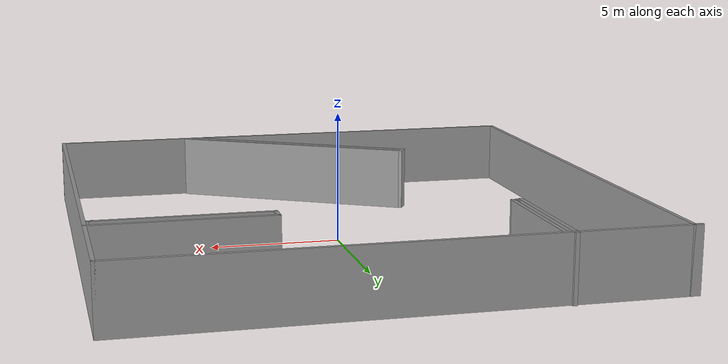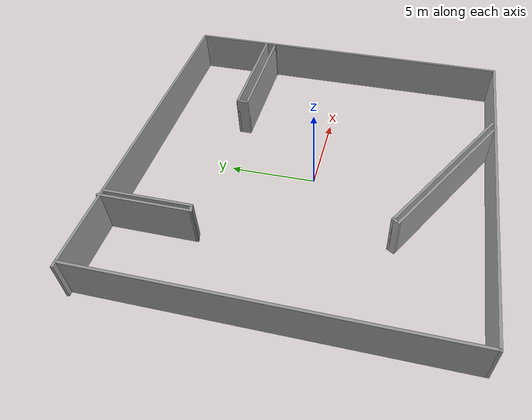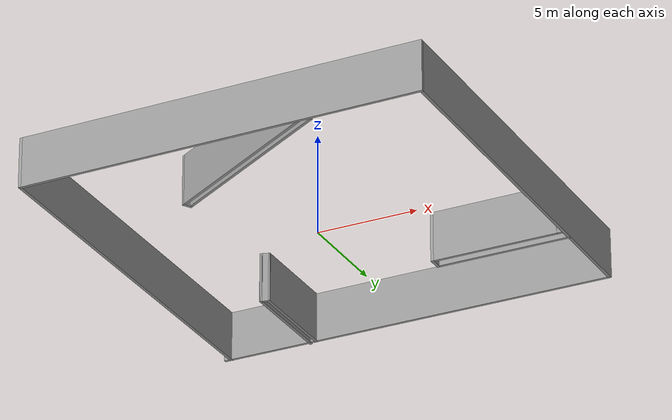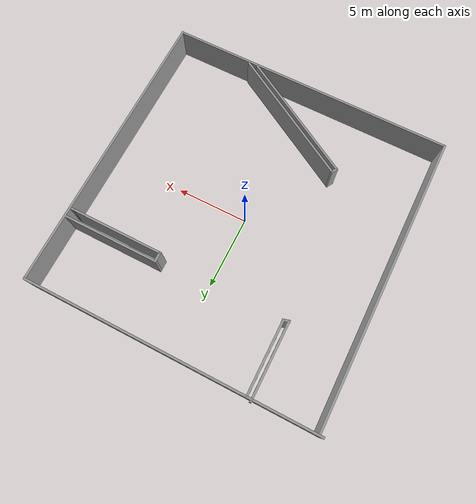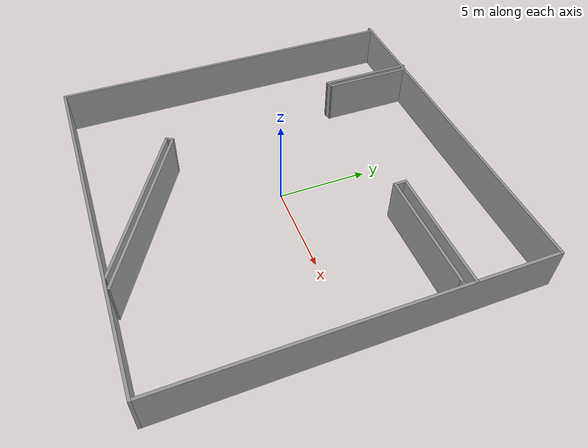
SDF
<?xml version='1.0'?>
<sdf version='1.7'>
  <model name='maze.world'>
    <pose>-0.033073 0.140552 0 0 -0 0</pose>
    <link name='Wall_10'>
      <collision name='Wall_10_Collision'>
        <geometry>
          <box>
            <size>5.25 0.15 2.5</size>
          </box>
        </geometry>
        <pose>0 0 1.25 0 -0 0</pose>
      </collision>
      <visual name='Wall_10_Visual'>
        <pose>0 0 1.25 0 -0 0</pose>
        <geometry>
          <box>
            <size>5.25 0.15 2.5</size>
          </box>
        </geometry>
        <material>
          <script>
            <uri>file://media/materials/scripts/gazebo.material</uri>
            <name>Gazebo/Grey</name>
          </script>
          <ambient>1 1 1 1</ambient>
        </material>
        <meta>
          <layer>0</layer>
        </meta>
      </visual>
      <pose>-5.54659 7.5526 0 0 -0 -1.5708</pose>
    </link>
    <link name='Wall_11'>
      <collision name='Wall_11_Collision'>
        <geometry>
          <box>
            <size>0.5 0.15 2.5</size>
          </box>
        </geometry>
        <pose>0 0 1.25 0 -0 0</pose>
      </collision>
      <visual name='Wall_11_Visual'>
        <pose>0 0 1.25 0 -0 0</pose>
        <geometry>
          <box>
            <size>0.5 0.15 2.5</size>
          </box>
        </geometry>
        <material>
          <script>
            <uri>file://media/materials/scripts/gazebo.material</uri>
            <name>Gazebo/Grey</name>
          </script>
          <ambient>1 1 1 1</ambient>
        </material>
        <meta>
          <layer>0</layer>
        </meta>
      </visual>
      <pose>-5.37756 5.0479 0 0 -0 0.261799</pose>
    </link>
    <link name='Wall_12'>
      <collision name='Wall_12_Collision'>
        <geometry>
          <box>
            <size>5 0.15 2.5</size>
          </box>
        </geometry>
        <pose>0 0 1.25 0 -0 0</pose>
      </collision>
      <visual name='Wall_12_Visual'>
        <pose>0 0 1.25 0 -0 0</pose>
        <geometry>
          <box>
            <size>5 0.15 2.5</size>
          </box>
        </geometry>
        <material>
          <script>
            <uri>file://media/materials/scripts/gazebo.material</uri>
            <name>Gazebo/Grey</name>
          </script>
          <ambient>1 1 1 1</ambient>
        </material>
        <meta>
          <layer>0</layer>
        </meta>
      </visual>
      <pose>-5.20852 7.51819 0 0 -0 1.5708</pose>
    </link>
    <link name='Wall_14'>
      <collision name='Wall_14_Collision'>
        <geometry>
          <box>
            <size>6.75 0.15 2.5</size>
          </box>
        </geometry>
        <pose>0 0 1.25 0 -0 0</pose>
      </collision>
      <visual name='Wall_14_Visual'>
        <pose>0 0 1.25 0 -0 0</pose>
        <geometry>
          <box>
            <size>6.75 0.15 2.5</size>
          </box>
        </geometry>
        <material>
          <script>
            <uri>file://media/materials/scripts/gazebo.material</uri>
            <name>Gazebo/Grey</name>
          </script>
          <ambient>1 1 1 1</ambient>
        </material>
        <meta>
          <layer>0</layer>
        </meta>
      </visual>
      <pose>6.74112 5.42097 0 0 -0 3.14159</pose>
    </link>
    <link name='Wall_15'>
      <collision name='Wall_15_Collision'>
        <geometry>
          <box>
            <size>0.75 0.15 2.5</size>
          </box>
        </geometry>
        <pose>0 0 1.25 0 -0 0</pose>
      </collision>
      <visual name='Wall_15_Visual'>
        <pose>0 0 1.25 0 -0 0</pose>
        <geometry>
          <box>
            <size>0.75 0.15 2.5</size>
          </box>
        </geometry>
        <material>
          <script>
            <uri>file://media/materials/scripts/gazebo.material</uri>
            <name>Gazebo/Grey</name>
          </script>
          <ambient>1 1 1 1</ambient>
        </material>
        <meta>
          <layer>0</layer>
        </meta>
      </visual>
      <pose>3.44112 5.12097 0 0 -0 -1.5708</pose>
    </link>
    <link name='Wall_16'>
      <collision name='Wall_16_Collision'>
        <geometry>
          <box>
            <size>6.5 0.15 2.5</size>
          </box>
        </geometry>
        <pose>0 0 1.25 0 -0 0</pose>
      </collision>
      <visual name='Wall_16_Visual'>
        <pose>0 0 1.25 0 -0 0</pose>
        <geometry>
          <box>
            <size>6.5 0.15 2.5</size>
          </box>
        </geometry>
        <material>
          <script>
            <uri>file://media/materials/scripts/gazebo.material</uri>
            <name>Gazebo/Grey</name>
          </script>
          <ambient>1 1 1 1</ambient>
        </material>
        <meta>
          <layer>0</layer>
        </meta>
      </visual>
      <pose>6.61612 4.82097 0 0 -0 0</pose>
    </link>
    <link name='Wall_17'>
      <collision name='Wall_17_Collision'>
        <geometry>
          <box>
            <size>0.15 0.15 2.5</size>
          </box>
        </geometry>
        <pose>0 0 1.25 0 -0 0</pose>
      </collision>
      <visual name='Wall_17_Visual'>
        <pose>0 0 1.25 0 -0 0</pose>
        <geometry>
          <box>
            <size>0.15 0.15 2.5</size>
          </box>
        </geometry>
        <material>
          <script>
            <uri>file://media/materials/scripts/gazebo.material</uri>
            <name>Gazebo/Grey</name>
          </script>
          <ambient>1 1 1 1</ambient>
        </material>
        <meta>
          <layer>0</layer>
        </meta>
      </visual>
      <pose>9.79112 4.82097 0 0 -0 0</pose>
    </link>
    <link name='Wall_18'>
      <collision name='Wall_18_Collision'>
        <geometry>
          <box>
            <size>0.25 0.15 2.5</size>
          </box>
        </geometry>
        <pose>0 0 1.25 0 -0 0</pose>
      </collision>
      <visual name='Wall_18_Visual'>
        <pose>0 0 1.25 0 -0 0</pose>
        <geometry>
          <box>
            <size>0.25 0.15 2.5</size>
          </box>
        </geometry>
        <material>
          <script>
            <uri>file://media/materials/scripts/gazebo.material</uri>
            <name>Gazebo/Grey</name>
          </script>
          <ambient>1 1 1 1</ambient>
        </material>
        <meta>
          <layer>0</layer>
        </meta>
      </visual>
      <pose>9.84112 4.82097 0 0 -0 0</pose>
    </link>
    <link name='Wall_20'>
      <collision name='Wall_20_Collision'>
        <geometry>
          <box>
            <size>9.5 0.15 2.5</size>
          </box>
        </geometry>
        <pose>0 0 1.25 0 -0 0</pose>
      </collision>
      <visual name='Wall_20_Visual'>
        <pose>0 0 1.25 0 -0 0</pose>
        <geometry>
          <box>
            <size>9.5 0.15 2.5</size>
          </box>
        </geometry>
        <material>
          <script>
            <uri>file://media/materials/scripts/gazebo.material</uri>
            <name>Gazebo/Grey</name>
          </script>
          <ambient>1 1 1 1</ambient>
        </material>
        <meta>
          <layer>0</layer>
        </meta>
      </visual>
      <pose>-0.019192 -7.66965 0 0 -0 2.61799</pose>
    </link>
    <link name='Wall_21'>
      <collision name='Wall_21_Collision'>
        <geometry>
          <box>
            <size>0.5 0.15 2.5</size>
          </box>
        </geometry>
        <pose>0 0 1.25 0 -0 0</pose>
      </collision>
      <visual name='Wall_21_Visual'>
        <pose>0 0 1.25 0 -0 0</pose>
        <geometry>
          <box>
            <size>0.5 0.15 2.5</size>
          </box>
        </geometry>
        <material>
          <script>
            <uri>file://media/materials/scripts/gazebo.material</uri>
            <name>Gazebo/Grey</name>
          </script>
          <ambient>1 1 1 1</ambient>
        </material>
        <meta>
          <layer>0</layer>
        </meta>
      </visual>
      <pose>-3.98036 -5.18059 0 0 -0 1.0472</pose>
    </link>
    <link name='Wall_22'>
      <collision name='Wall_22_Collision'>
        <geometry>
          <box>
            <size>10 0.15 2.5</size>
          </box>
        </geometry>
        <pose>0 0 1.25 0 -0 0</pose>
      </collision>
      <visual name='Wall_22_Visual'>
        <pose>0 0 1.25 0 -0 0</pose>
        <geometry>
          <box>
            <size>10 0.15 2.5</size>
          </box>
        </geometry>
        <material>
          <script>
            <uri>file://media/materials/scripts/gazebo.material</uri>
            <name>Gazebo/Grey</name>
          </script>
          <ambient>1 1 1 1</ambient>
        </material>
        <meta>
          <layer>0</layer>
        </meta>
      </visual>
      <pose>0.372314 -7.49154 0 0 -0 -0.523599</pose>
    </link>
    <link name='Wall_3'>
      <collision name='Wall_3_Collision'>
        <geometry>
          <box>
            <size>20.25 0.15 2.5</size>
          </box>
        </geometry>
        <pose>0 0 1.25 0 -0 0</pose>
      </collision>
      <visual name='Wall_3_Visual'>
        <pose>0 0 1.25 0 -0 0</pose>
        <geometry>
          <box>
            <size>20.25 0.15 2.5</size>
          </box>
        </geometry>
        <material>
          <script>
            <uri>file://media/materials/scripts/gazebo.material</uri>
            <name>Gazebo/Grey</name>
          </script>
          <ambient>1 1 1 1</ambient>
        </material>
        <meta>
          <layer>0</layer>
        </meta>
      </visual>
      <pose>-0 9.9974 0 0 -0 0</pose>
    </link>
    <link name='Wall_4'>
      <collision name='Wall_4_Collision'>
        <geometry>
          <box>
            <size>20.25 0.15 2.5</size>
          </box>
        </geometry>
        <pose>0 0 1.25 0 -0 0</pose>
      </collision>
      <visual name='Wall_4_Visual'>
        <pose>0 0 1.25 0 -0 0</pose>
        <geometry>
          <box>
            <size>20.25 0.15 2.5</size>
          </box>
        </geometry>
        <material>
          <script>
            <uri>file://media/materials/scripts/gazebo.material</uri>
            <name>Gazebo/Grey</name>
          </script>
          <ambient>1 1 1 1</ambient>
        </material>
        <meta>
          <layer>0</layer>
        </meta>
      </visual>
      <pose>10.05 -0.052602 0 0 -0 -1.5708</pose>
    </link>
    <link name='Wall_7'>
      <collision name='Wall_7_Collision'>
        <geometry>
          <box>
            <size>20 0.15 2.5</size>
          </box>
        </geometry>
        <pose>0 0 1.25 0 -0 0</pose>
      </collision>
      <visual name='Wall_7_Visual'>
        <pose>0 0 1.25 0 -0 0</pose>
        <geometry>
          <box>
            <size>20 0.15 2.5</size>
          </box>
        </geometry>
        <material>
          <script>
            <uri>file://media/materials/scripts/gazebo.material</uri>
            <name>Gazebo/Grey</name>
          </script>
          <ambient>1 1 1 1</ambient>
        </material>
        <meta>
          <layer>0</layer>
        </meta>
      </visual>
      <pose>0.125 -10.1026 0 0 -0 3.14159</pose>
    </link>
    <link name='Wall_8'>
      <collision name='Wall_8_Collision'>
        <geometry>
          <box>
            <size>20.25 0.15 2.5</size>
          </box>
        </geometry>
        <pose>0 0 1.25 0 -0 0</pose>
      </collision>
      <visual name='Wall_8_Visual'>
        <pose>0 0 1.25 0 -0 0</pose>
        <geometry>
          <box>
            <size>20.25 0.15 2.5</size>
          </box>
        </geometry>
        <material>
          <script>
            <uri>file://media/materials/scripts/gazebo.material</uri>
            <name>Gazebo/Grey</name>
          </script>
          <ambient>1 1 1 1</ambient>
        </material>
        <meta>
          <layer>0</layer>
        </meta>
      </visual>
      <pose>-9.8 -0.052602 0 0 -0 1.5708</pose>
    </link>
    <static>1</static>
  </model>
</sdf>
